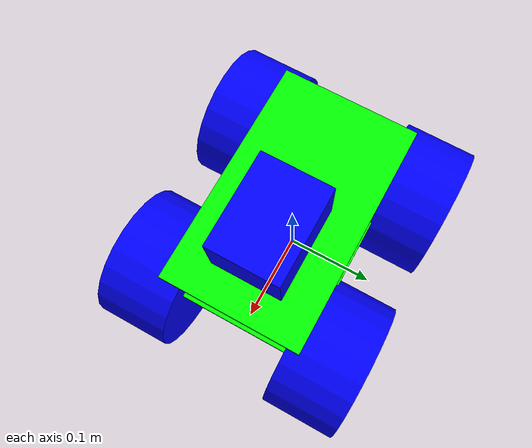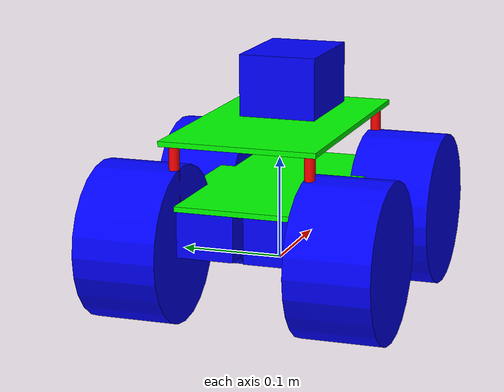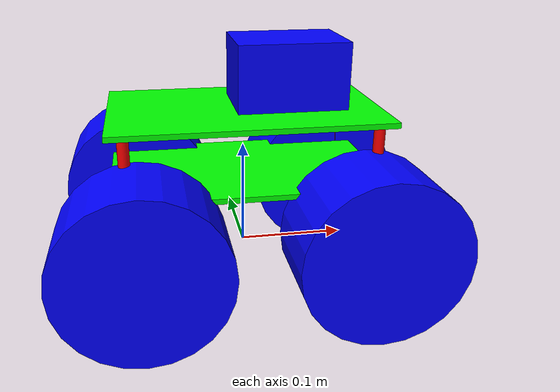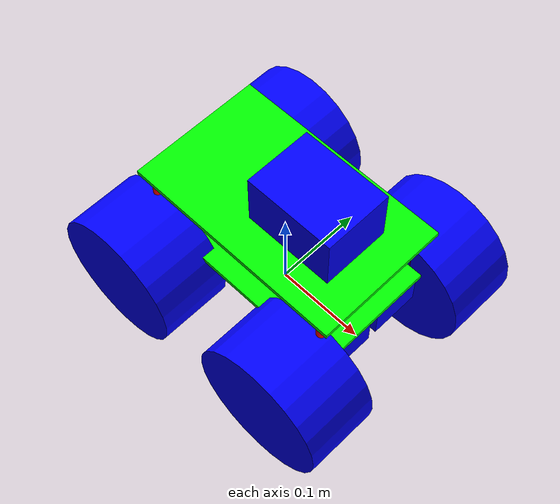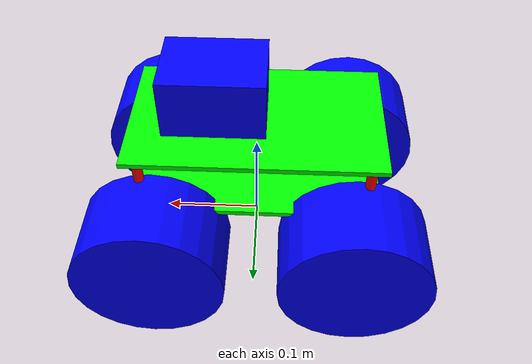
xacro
<?xml version="1.0"?>
<robot name="kobuki" xmlns:xacro="http://wiki.ros.org/xacro">

  <xacro:arg name="robot_type" default="omni"/>

  <xacro:property name="type" value="$(arg robot_type)" />
  <xacro:include filename="$(find project_gazebo)/urdf/base.xacro"/>
  <xacro:include filename="$(find project_gazebo)/urdf/pillar.xacro"/>
  <xacro:include filename="$(find project_gazebo)/urdf/motor.xacro"/>
  <xacro:include filename="$(find project_gazebo)/urdf/lidar.xacro"/>
  <xacro:include filename="$(find project_gazebo)/urdf/wheel.xacro"/>

  <link name="base_footprint" />

  <xacro:robot_base parent="base_footprint" child="base_link" xyz="0 0 0.075" rpy="0 0 0" />
  <xacro:robot_base parent="base_link" child="base_laser_link" xyz="0 0 0.06" rpy="0 0 0" />

  <xacro:robot_pillar parent="base_link" child="first_front_left_pillar_link" xyz="0.11 0.065 0.03" rpy="0 0 0" />
  <xacro:robot_pillar parent="base_link" child="first_front_right_pillar_link" xyz="0.11 -0.065 0.03" rpy="0 0 0" />
  <xacro:robot_pillar parent="base_link" child="first_back_left_pillar_link" xyz="-0.11 0.065 0.03" rpy="0 0 0" />
  <xacro:robot_pillar parent="base_link" child="first_back_right_pillar_link" xyz="-0.11 -0.065 0.03" rpy="0 0 0" />

  <xacro:robot_motor parent="base_link" child="front_left_motor_link" xyz="0.10 0.040 -0.025" rpy="0 0 0" />
  <xacro:robot_motor parent="base_link" child="front_right_motor_link" xyz="0.10 -0.040 -0.025" rpy="0 0 0" />
  <xacro:robot_motor parent="base_link" child="back_left_motor_link" xyz="-0.10 0.040 -0.025" rpy="0 0 0" />
  <xacro:robot_motor parent="base_link" child="back_right_motor_link" xyz="-0.10 -0.040 -0.025" rpy="0 0 0" />

  <xacro:wheel parent="front_left_motor_link" child="front_left_wheel_link" xyz="0.0 0.060 -0.015" rpy="1.57 0 0" robot_type="$(arg robot_type)" />
  <xacro:wheel parent="front_right_motor_link" child="front_right_wheel_link" xyz="0.0 -0.060 -0.015" rpy="1.57 0 0" robot_type="$(arg robot_type)" />
  <xacro:wheel parent="back_left_motor_link" child="back_left_wheel_link" xyz="0.0 0.060 -0.015" rpy="1.57 0 0" robot_type="$(arg robot_type)" />
  <xacro:wheel parent="back_right_motor_link" child="back_right_wheel_link" xyz="0.0 -0.060 -0.015" rpy="1.57 0 0" robot_type="$(arg robot_type)" />

  <xacro:lidar parent="base_laser_link" child="lidar_link" xyz="0.04 0.0 0.035" rpy="0 0 0" />

  <xacro:if value="${type == 'omni'}">
    <gazebo>
      <plugin name="object_controller" filename="libgazebo_ros_planar_move.so">
        <ros>
          <xacro:argument>odom:=odom/unfiltered</xacro:argument>
        </ros>
        <command_topic>cmd_vel</command_topic>
        <odometry_topic>odom/unfiltered</odometry_topic>
        <odometry_frame>odom</odometry_frame>
        <odometry_rate>20.0</odometry_rate>
        <robot_base_frame>base_footprint</robot_base_frame>
        <publish_odom>true</publish_odom>
        <publish_odom_tf>true</publish_odom_tf>
      </plugin>
    </gazebo>
  </xacro:if>

  <xacro:if value="${type == 'diff'}">
   <gazebo>
      <plugin name="skid_steer_drive" filename="libgazebo_ros_diff_drive.so">

         <num_wheel_pairs>2</num_wheel_pairs>

        <left_joint>front_left_motor_link_to_front_left_wheel_link_joint</left_joint>
        <right_joint>front_right_motor_link_to_front_right_wheel_link_joint</right_joint>
        <left_joint>back_left_motor_link_to_back_left_wheel_link_joint</left_joint>
        <right_joint>back_right_motor_link_to_back_right_wheel_link_joint</right_joint>

        <wheel_separation>0.215</wheel_separation>
        <wheel_separation>0.215</wheel_separation>

        <wheel_diameter>0.035</wheel_diameter>
        <wheel_diameter>0.035</wheel_diameter>

        <max_wheel_torque>50</max_wheel_torque>
        <max_wheel_acceleration>10.0</max_wheel_acceleration>

        <odometry_frame>odom</odometry_frame>
        <robot_base_frame>base_footprint</robot_base_frame>

        <publish_odom>true</publish_odom>
        <publish_odom_tf>true</publish_odom_tf>
        <publish_wheel_tf>true</publish_wheel_tf>
      </plugin>
     </gazebo>
  </xacro:if>

</robot>

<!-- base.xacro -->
<robot xmlns:xacro="http://wiki.ros.org/xacro">

  <xacro:macro name="robot_base" params="parent child xyz rpy">

    <link name="${child}">
      <visual>
        <geometry>
          <box size="0.25 0.15 0.005" />
        </geometry>
        <material name="green">
          <color rgba="0.0 1 0.0 1" />
        </material>
      </visual>
      <collision>
        <geometry>
          <box size="0.25 0.15 0.005" />
        </geometry>
      </collision>
      <inertial>
        <mass value="0.5" />
        <inertia ixx="0.015" ixy="0" ixz="0" iyy="0.0375" iyz="0.0" izz="0.0275" />
      </inertial>
    </link>

    <joint name="${parent}_to_${child}_joint" type="fixed">
      <origin xyz="${xyz}" rpy="${rpy}" />
      <parent link="${parent}" />
      <child link="${child}" />
    </joint>

  </xacro:macro>
</robot>

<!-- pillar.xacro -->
<robot xmlns:xacro="http://wiki.ros.org/xacro">

  <xacro:macro name="robot_pillar" params="parent child xyz rpy">

    <link name="${child}">
      <visual>
        <geometry>
          <cylinder radius="0.005" length="0.06" />
        </geometry>
        <material name="red">
          <color rgba="1 0.0 0.0 1" />
        </material>
      </visual>
      <collision>
        <geometry>
          <cylinder radius="0.005" length="0.06" />
        </geometry>
      </collision>
      <inertial>
        <mass value="0.1" />
        <inertia ixx="0.015" ixy="0" ixz="0" iyy="0.0375" iyz="0.0" izz="0.0275" />
      </inertial>
    </link>

    <joint name="${parent}_to_${child}_joint" type="fixed">
      <origin xyz="${xyz}" rpy="${rpy}" />
      <parent link="${parent}" />
      <child link="${child}" />
    </joint>

  </xacro:macro>

</robot>

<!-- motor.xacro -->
<robot xmlns:xacro="http://wiki.ros.org/xacro">

  <xacro:macro name="robot_motor" params="parent child xyz rpy">

    <link name="${child}">
      <visual>
        <geometry>
          <box size="0.04 0.07 0.045" />
        </geometry>
        <material name="blue">
          <color rgba="0.0 0.0 1 1" />
        </material>
      </visual>
      <collision>
        <geometry>
          <box size="0.04 0.07 0.045" />
        </geometry>
      </collision>
      <inertial>
        <mass value="0.2" />
        <inertia ixx="0.015" ixy="0" ixz="0" iyy="0.0375" iyz="0.0" izz="0.0275" />
      </inertial>
    </link>

    <joint name="${parent}_to_${child}_joint" type="fixed">
      <origin xyz="${xyz}" rpy="${rpy}" />
      <parent link="${parent}" />
      <child link="${child}" />
    </joint>

  </xacro:macro>

</robot>

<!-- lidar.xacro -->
<robot xmlns:xacro="http://wiki.ros.org/xacro">

  <xacro:macro name="lidar" params="parent child xyz rpy">

    <link name="${child}">
      <visual>
        <geometry>
          <box size="0.10 0.075 0.060" />
          <mesh filename="package://rrt_exploration_tutorials/launch/includes/meshes/hokuyo.dae"/>
        </geometry>
        <material name="blue">
          <color rgba="0.0 0.0 1 1" />
        </material>
      </visual>
      <collision>
        <geometry>
          <box size="0.10 0.075 0.060" />
        </geometry>
      </collision>
      <inertial>
        <mass value="0.01" />
        <inertia ixx="0.015" ixy="0" ixz="0" iyy="0.0375" iyz="0.0" izz="0.0275" />
      </inertial>
    </link>

    <joint name="${parent}_to_${child}_joint" type="fixed">
      <origin xyz="${xyz}" rpy="${rpy}" />
      <parent link="${parent}" />
      <child link="${child}" />
    </joint>

  </xacro:macro>

</robot>

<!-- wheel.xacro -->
<robot xmlns:xacro="http://wiki.ros.org/xacro">

  <xacro:macro name="wheel" params="parent child xyz rpy robot_type">

    <link name="${child}">
      <visual>
        <geometry>
          <cylinder radius="0.075" length="0.08"/>
        </geometry>
        <material name="blue">
          <color rgba="0.0 0.0 1 1" />
        </material>
      </visual>
      <collision>
        <geometry>
          <cylinder radius="0.075" length="0.08"/>
        </geometry>
      </collision>
      <inertial>
        <mass value="0.5" />
        <inertia ixx="0.05" ixy="0" ixz="0" iyy="0.05" iyz="0.0" izz="0.05" />
      </inertial>
    </link>

    <xacro:if value="${robot_type == 'omni'}">
      <joint name="${parent}_to_${child}_joint" type="fixed">
        <axis xyz="0.0 0.0 1"/>
        <origin xyz="${xyz}" rpy="${rpy}" />
        <parent link="${parent}" />
        <child link="${child}" />
      </joint>
    </xacro:if>

    <xacro:if value="${robot_type == 'diff'}">
      <joint name="${parent}_to_${child}_joint" type="continuous">
        <axis xyz="0.0 0.0 1"/>
        <origin xyz="${xyz}" rpy="${rpy}" />
        <parent link="${parent}" />
        <child link="${child}" />
      </joint>
    </xacro:if>

  </xacro:macro>

</robot>
